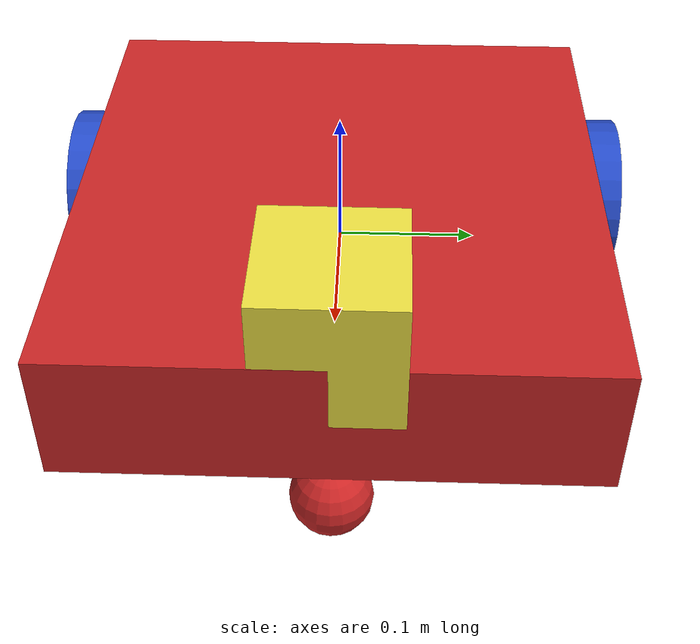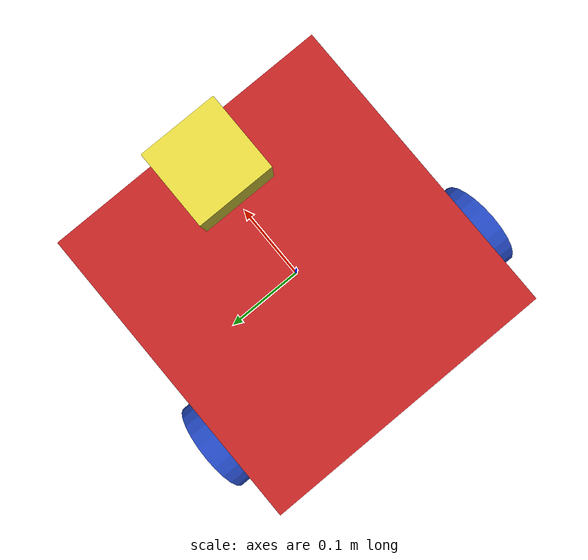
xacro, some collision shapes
<?xml version='1.0'?>

<robot name="myrobot" xmlns:xacro="http://www.ros.org/wiki/xacro">
<xacro:include filename="$(find my_robot_description)/urdf/my_robot.gazebo" />

<!-- ******************Robot Definition***********************************  /-->

<!--Chassis & Caster Link /-->

 <link name='chassis'>

   <visual name='chassis_visual'>

      <origin xyz="0 0 0" rpy=" 0 0 0"/>

      <geometry>
        <box size=".4 .38 .10"/>
      </geometry>

    </visual>

   <inertial>

      <mass value="10.0"/>
      <origin xyz="0 0 0" rpy=" 0 0 0"/>
      <inertia
          ixx="0.5" ixy="0" ixz="0"
          iyy="1.0" iyz="0"
          izz="0.1"
      />

   </inertial>

   <collision name='collision'>
      <geometry>
        <box size=".4 .38 .10"/>
      </geometry>
   </collision>

 <collision name='caster_collision'>
    <origin xyz="0.17 0 -0.1" rpy=" 0 0 0"/>

    <geometry>
        <sphere radius="0.03"/>
    </geometry>

    <surface>

        <friction>
          <ode>
            <mu>0</mu>
            <mu2>0</mu2>
            <slip1>1.0</slip1>
            <slip2>1.0</slip2>
          </ode>
        </friction>

     </surface>

 </collision>

<visual name='caster_visual'>

     <origin xyz="0.17 0 -0.1" rpy=" 0 0 0"/>

     <geometry>
      <sphere radius="0.03"/>
     </geometry>

</visual>

</link>

<!-- ++++++++++++++++Left wheel+++++++++++++++++++++++++++++++ /-->

<!--left wheel Joint /-->

  <joint type="continuous" name="left_wheel_hinge">
    <origin xyz="-0.1 0.19 -0.03" rpy="0 0 0"/>
    <child link="left_wheel"/>
    <parent link="chassis"/>
    <axis xyz="0 1 0" rpy="0 0 0"/>
    <limit effort="100" velocity="100"/>
    <joint_properties damping="0.0" friction="0.0"/>
  </joint>

<!--left wheel Link /-->

 <link name="left_wheel">

    <visual name="left_wheel_visual">
      <origin xyz="0 0 0" rpy="0 1.5707 1.5707"/>
      <geometry>
        <cylinder radius="0.06" length="0.06"/>
      </geometry>
    </visual>

    <collision name="collision">
      <origin xyz="0 0 0" rpy="0 1.5707 1.5707"/>
      <geometry>
        <cylinder radius="0.06" length="0.06"/>
      </geometry>
    </collision>

    <inertial>
      <origin xyz="0 0 0" rpy="0 1.5707 1.5707"/>
      <mass value="5"/>
      <cylinder_inertia m="5" r="0.06" h="0.06"/>
      <inertia
        ixx="1.0" ixy="0.0" ixz="0.0"
        iyy="1.0" iyz="0.0"
        izz="1.0"/>
    </inertial>

 </link>

<!-- +++++++++++++++++++ Right Wheel +++++++++++++++++++++++++++++++++ /-->

<!--Right wheel joint/-->
  <joint type="continuous" name="right_wheel_hinge">

    <origin xyz="-0.1 -0.19 -0.03" rpy="0 0 0"/>

    <child link="right_wheel"/>
    <parent link="chassis"/>

    <axis xyz="0 1 0" rpy="0 0 0"/>

    <limit effort="100" velocity="100"/>

    <joint_properties damping="0.0" friction="0.0"/>

  </joint>

<!--Right Wheel link /-->

  <link name="right_wheel">

    <visual name="right_wheel_visual">

      <origin xyz="0 0 0" rpy="0 1.5707 1.5707"/>

      <geometry>
        <cylinder radius="0.06" length="0.06"/>
      </geometry>

    </visual>

    <collision name="collision">

      <origin xyz="0 0 0" rpy="0 1.5707 1.5707"/>

      <geometry>
        <cylinder radius="0.06" length="0.06"/>
      </geometry>

    </collision>

    <inertial>

      <origin xyz="0 0 0" rpy="0 1.5707 1.5707"/>
      <mass value="5"/>
      <cylinder_inertia m="5" r="0.06" h="0.06"/>

      <inertia
        ixx="1.0" ixy="0.0" ixz="0.0"
        iyy="1.0" iyz="0.0"
        izz="1.0"/>
      </inertial>

  </link>

<!-- ++++++++++++++++++  Kinect  +++++++++++++++++++++++++++++ /-->
<!--kinect joint /-->

<joint name="kinect_joint" type="fixed">

    <origin xyz=".15 0 .05" rpy="0 0 0"/>

    <parent link="chassis"/>
    <child link="camera_link"/>

</joint>

<!--Kinect  Link /-->

<link name="camera_link">

 <visual>

      <origin xyz="0 0 0.05" rpy="0 0 6.28"/>

      <geometry>

      <mesh filename="package://mybot_description/meshes/kinect.dae"/>

      </geometry>

 </visual>

 <collision>
    <origin xyz="0 0 0" rpy="0 0 6.28"/>

    <geometry>
    <box size="0.1 0.1 0.1"/>
    </geometry>

 </collision>

 <inertial>
     <mass value="1" />
     <origin xyz="0 0 0" rpy="0 0 6.28"/>
     <inertia ixx="1e-6" ixy="0" ixz="0" iyy="1e-6" iyz="0" izz="1e-6" />
 </inertial>

</link>

<!--  Kinect Optical Link and joints   /-->

<joint name="kinect_optical_joint" type="fixed">

<origin xyz="0 0 0" rpy="-1.5707 0 -1.5707"/> <!-- To invert the coordinates from image convention (Z is forward) to normal xyz /-->
<parent link="camera_link"/>
<child link="kinect_optical"/>
</joint>

<!--Virtual link to project the images to, and then flip it to us as its joint is flipped  /-->
<link name="kinect_optical">
</link>

</robot>
